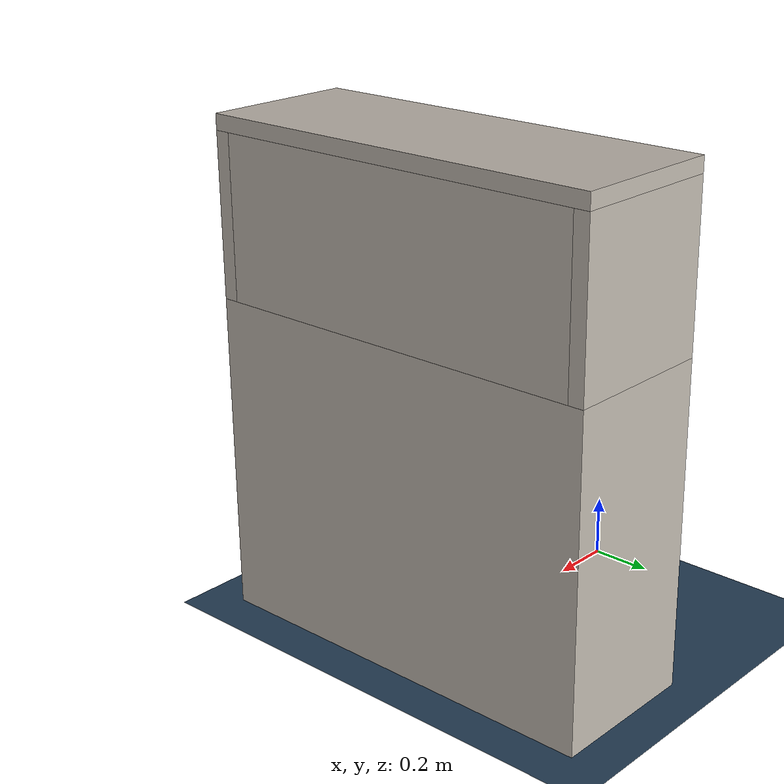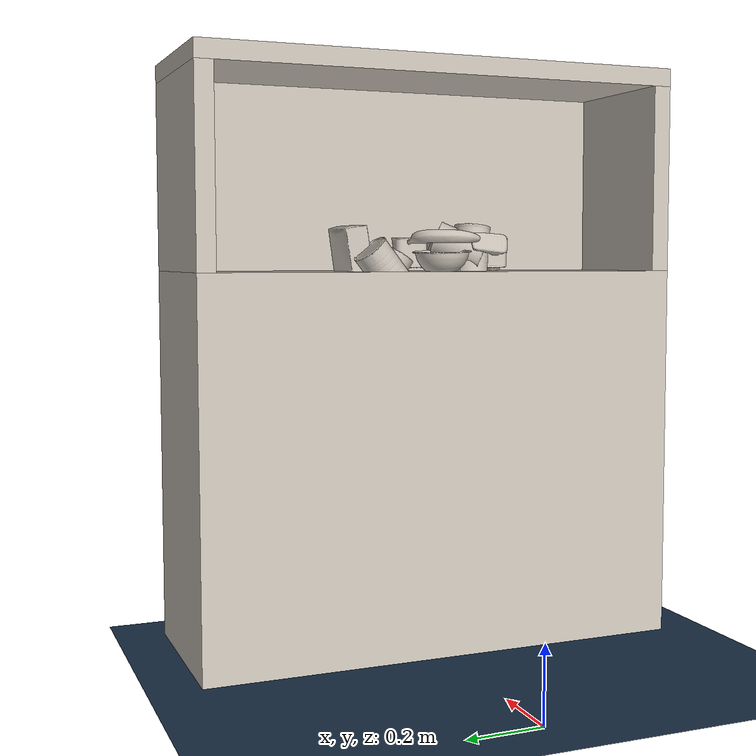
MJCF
<mujoco model="World">

  <compiler angle="radian" balanceinertia="true" inertiafromgeom="true" meshdir="/home/pracsys/GraspClutter6D_local" texturedir="/home/pracsys/GraspClutter6D_local" autolimits="true" />

  <option integrator="Euler" cone="elliptic" solver="CG" noslip_iterations="2">
    <flag warmstart="disable" multiccd="enable" />
  </option>

  <default>
    <geom density="10" />
  </default>

  <asset>

    <texture type="skybox" builtin="flat" rgb1="1 1 1" rgb2="0 0 0" width="512" height="512" />
    <texture name="grid" type="2d" builtin="checker" width="512" height="512" rgb1=".1 .2 .3" rgb2=".2 .3 .4" />
    <material name="grid" texture="grid" texrepeat="2 2" texuniform="true" specular="0" shininess="0" reflectance="0" emission="1" />

    <texture file="models/rs_table/ceramic.png" type="cube" name="tex-ceramic" />
    <material name="table_ceramic" reflectance="0.0" shininess="0.0" specular="0.2" texrepeat="1 1" texture="tex-ceramic" />
  <texture name="obj_000001_0_tex" type="2d" file="models_obj_m/obj_000001/obj_000001.png" /><material name="obj_000001_0_mat" texture="obj_000001_0_tex" specular="1.0" shininess="0.0" /><mesh name="obj_000001_0_vis" file="models_obj_m/obj_000001/obj_000001.obj" /><mesh name="obj_000001_0_obj_000001_collision_0" file="models_obj_m/obj_000001/obj_000001_collision_0.obj" /><mesh name="obj_000001_0_obj_000001_collision_1" file="models_obj_m/obj_000001/obj_000001_collision_1.obj" /><mesh name="obj_000001_0_obj_000001_collision_2" file="models_obj_m/obj_000001/obj_000001_collision_2.obj" /><mesh name="obj_000001_0_obj_000001_collision_3" file="models_obj_m/obj_000001/obj_000001_collision_3.obj" /><texture name="obj_000001_1_tex" type="2d" file="models_obj_m/obj_000001/obj_000001.png" /><material name="obj_000001_1_mat" texture="obj_000001_1_tex" specular="1.0" shininess="0.0" /><mesh name="obj_000001_1_vis" file="models_obj_m/obj_000001/obj_000001.obj" /><mesh name="obj_000001_1_obj_000001_collision_0" file="models_obj_m/obj_000001/obj_000001_collision_0.obj" /><mesh name="obj_000001_1_obj_000001_collision_1" file="models_obj_m/obj_000001/obj_000001_collision_1.obj" /><mesh name="obj_000001_1_obj_000001_collision_2" file="models_obj_m/obj_000001/obj_000001_collision_2.obj" /><mesh name="obj_000001_1_obj_000001_collision_3" file="models_obj_m/obj_000001/obj_000001_collision_3.obj" /><texture name="obj_000001_2_tex" type="2d" file="models_obj_m/obj_000001/obj_000001.png" /><material name="obj_000001_2_mat" texture="obj_000001_2_tex" specular="1.0" shininess="0.0" /><mesh name="obj_000001_2_vis" file="models_obj_m/obj_000001/obj_000001.obj" /><mesh name="obj_000001_2_obj_000001_collision_0" file="models_obj_m/obj_000001/obj_000001_collision_0.obj" /><mesh name="obj_000001_2_obj_000001_collision_1" file="models_obj_m/obj_000001/obj_000001_collision_1.obj" /><mesh name="obj_000001_2_obj_000001_collision_2" file="models_obj_m/obj_000001/obj_000001_collision_2.obj" /><mesh name="obj_000001_2_obj_000001_collision_3" file="models_obj_m/obj_000001/obj_000001_collision_3.obj" /><texture name="obj_000001_3_tex" type="2d" file="models_obj_m/obj_000001/obj_000001.png" /><material name="obj_000001_3_mat" texture="obj_000001_3_tex" specular="1.0" shininess="0.0" /><mesh name="obj_000001_3_vis" file="models_obj_m/obj_000001/obj_000001.obj" /><mesh name="obj_000001_3_obj_000001_collision_0" file="models_obj_m/obj_000001/obj_000001_collision_0.obj" /><mesh name="obj_000001_3_obj_000001_collision_1" file="models_obj_m/obj_000001/obj_000001_collision_1.obj" /><mesh name="obj_000001_3_obj_000001_collision_2" file="models_obj_m/obj_000001/obj_000001_collision_2.obj" /><mesh name="obj_000001_3_obj_000001_collision_3" file="models_obj_m/obj_000001/obj_000001_collision_3.obj" /><texture name="obj_000002_0_tex" type="2d" file="models_obj_m/obj_000002/obj_000002.png" /><material name="obj_000002_0_mat" texture="obj_000002_0_tex" specular="1.0" shininess="0.0" /><mesh name="obj_000002_0_vis" file="models_obj_m/obj_000002/obj_000002.obj" /><mesh name="obj_000002_0_obj_000002_collision_0" file="models_obj_m/obj_000002/obj_000002_collision_0.obj" /><mesh name="obj_000002_0_obj_000002_collision_1" file="models_obj_m/obj_000002/obj_000002_collision_1.obj" /><mesh name="obj_000002_0_obj_000002_collision_2" file="models_obj_m/obj_000002/obj_000002_collision_2.obj" /><mesh name="obj_000002_0_obj_000002_collision_3" file="models_obj_m/obj_000002/obj_000002_collision_3.obj" /><mesh name="obj_000002_0_obj_000002_collision_4" file="models_obj_m/obj_000002/obj_000002_collision_4.obj" /><mesh name="obj_000002_0_obj_000002_collision_5" file="models_obj_m/obj_000002/obj_000002_collision_5.obj" /><mesh name="obj_000002_0_obj_000002_collision_6" file="models_obj_m/obj_000002/obj_000002_collision_6.obj" /><mesh name="obj_000002_0_obj_000002_collision_7" file="models_obj_m/obj_000002/obj_000002_collision_7.obj" /><mesh name="obj_000002_0_obj_000002_collision_8" file="models_obj_m/obj_000002/obj_000002_collision_8.obj" /><mesh name="obj_000002_0_obj_000002_collision_9" file="models_obj_m/obj_000002/obj_000002_collision_9.obj" /><mesh name="obj_000002_0_obj_000002_collision_10" file="models_obj_m/obj_000002/obj_000002_collision_10.obj" /><mesh name="obj_000002_0_obj_000002_collision_11" file="models_obj_m/obj_000002/obj_000002_collision_11.obj" /><texture name="obj_000002_1_tex" type="2d" file="models_obj_m/obj_000002/obj_000002.png" /><material name="obj_000002_1_mat" texture="obj_000002_1_tex" specular="1.0" shininess="0.0" /><mesh name="obj_000002_1_vis" file="models_obj_m/obj_000002/obj_000002.obj" /><mesh name="obj_000002_1_obj_000002_collision_0" file="models_obj_m/obj_000002/obj_000002_collision_0.obj" /><mesh name="obj_000002_1_obj_000002_collision_1" file="models_obj_m/obj_000002/obj_000002_collision_1.obj" /><mesh name="obj_000002_1_obj_000002_collision_2" file="models_obj_m/obj_000002/obj_000002_collision_2.obj" /><mesh name="obj_000002_1_obj_000002_collision_3" file="models_obj_m/obj_000002/obj_000002_collision_3.obj" /><mesh name="obj_000002_1_obj_000002_collision_4" file="models_obj_m/obj_000002/obj_000002_collision_4.obj" /><mesh name="obj_000002_1_obj_000002_collision_5" file="models_obj_m/obj_000002/obj_000002_collision_5.obj" /><mesh name="obj_000002_1_obj_000002_collision_6" file="models_obj_m/obj_000002/obj_000002_collision_6.obj" /><mesh name="obj_000002_1_obj_000002_collision_7" file="models_obj_m/obj_000002/obj_000002_collision_7.obj" /><mesh name="obj_000002_1_obj_000002_collision_8" file="models_obj_m/obj_000002/obj_000002_collision_8.obj" /><mesh name="obj_000002_1_obj_000002_collision_9" file="models_obj_m/obj_000002/obj_000002_collision_9.obj" /><mesh name="obj_000002_1_obj_000002_collision_10" file="models_obj_m/obj_000002/obj_000002_collision_10.obj" /><mesh name="obj_000002_1_obj_000002_collision_11" file="models_obj_m/obj_000002/obj_000002_collision_11.obj" /><texture name="obj_000003_0_tex" type="2d" file="models_obj_m/obj_000003/obj_000003.png" /><material name="obj_000003_0_mat" texture="obj_000003_0_tex" specular="1.0" shininess="0.0" /><mesh name="obj_000003_0_vis" file="models_obj_m/obj_000003/obj_000003.obj" /><mesh name="obj_000003_0_obj_000003_collision_0" file="models_obj_m/obj_000003/obj_000003_collision_0.obj" /><mesh name="obj_000003_0_obj_000003_collision_1" file="models_obj_m/obj_000003/obj_000003_collision_1.obj" /><texture name="obj_000003_1_tex" type="2d" file="models_obj_m/obj_000003/obj_000003.png" /><material name="obj_000003_1_mat" texture="obj_000003_1_tex" specular="1.0" shininess="0.0" /><mesh name="obj_000003_1_vis" file="models_obj_m/obj_000003/obj_000003.obj" /><mesh name="obj_000003_1_obj_000003_collision_0" file="models_obj_m/obj_000003/obj_000003_collision_0.obj" /><mesh name="obj_000003_1_obj_000003_collision_1" file="models_obj_m/obj_000003/obj_000003_collision_1.obj" /><texture name="obj_000008_0_tex" type="2d" file="models_obj_m/obj_000008/obj_000008.png" /><material name="obj_000008_0_mat" texture="obj_000008_0_tex" specular="1.0" shininess="0.0" /><mesh name="obj_000008_0_vis" file="models_obj_m/obj_000008/obj_000008.obj" /><mesh name="obj_000008_0_obj_000008_collision_0" file="models_obj_m/obj_000008/obj_000008_collision_0.obj" /><mesh name="obj_000008_0_obj_000008_collision_1" file="models_obj_m/obj_000008/obj_000008_collision_1.obj" /><texture name="obj_000009_0_tex" type="2d" file="models_obj_m/obj_000009/obj_000010.png" /><material name="obj_000009_0_mat" texture="obj_000009_0_tex" specular="1.0" shininess="0.0" /><mesh name="obj_000009_0_vis" file="models_obj_m/obj_000009/obj_000009.obj" /><mesh name="obj_000009_0_obj_000009_collision_0" file="models_obj_m/obj_000009/obj_000009_collision_0.obj" /><mesh name="obj_000009_0_obj_000009_collision_1" file="models_obj_m/obj_000009/obj_000009_collision_1.obj" /><mesh name="obj_000009_0_obj_000009_collision_2" file="models_obj_m/obj_000009/obj_000009_collision_2.obj" /><mesh name="obj_000009_0_obj_000009_collision_3" file="models_obj_m/obj_000009/obj_000009_collision_3.obj" /><mesh name="obj_000009_0_obj_000009_collision_4" file="models_obj_m/obj_000009/obj_000009_collision_4.obj" /><mesh name="obj_000009_0_obj_000009_collision_5" file="models_obj_m/obj_000009/obj_000009_collision_5.obj" /><mesh name="obj_000009_0_obj_000009_collision_6" file="models_obj_m/obj_000009/obj_000009_collision_6.obj" /><mesh name="obj_000009_0_obj_000009_collision_7" file="models_obj_m/obj_000009/obj_000009_collision_7.obj" /><mesh name="obj_000009_0_obj_000009_collision_8" file="models_obj_m/obj_000009/obj_000009_collision_8.obj" /><mesh name="obj_000009_0_obj_000009_collision_9" file="models_obj_m/obj_000009/obj_000009_collision_9.obj" /><mesh name="obj_000009_0_obj_000009_collision_10" file="models_obj_m/obj_000009/obj_000009_collision_10.obj" /><mesh name="obj_000009_0_obj_000009_collision_11" file="models_obj_m/obj_000009/obj_000009_collision_11.obj" /><mesh name="obj_000009_0_obj_000009_collision_12" file="models_obj_m/obj_000009/obj_000009_collision_12.obj" /><mesh name="obj_000009_0_obj_000009_collision_13" file="models_obj_m/obj_000009/obj_000009_collision_13.obj" /><mesh name="obj_000009_0_obj_000009_collision_14" file="models_obj_m/obj_000009/obj_000009_collision_14.obj" /><mesh name="obj_000009_0_obj_000009_collision_15" file="models_obj_m/obj_000009/obj_000009_collision_15.obj" /><mesh name="obj_000009_0_obj_000009_collision_16" file="models_obj_m/obj_000009/obj_000009_collision_16.obj" /><mesh name="obj_000009_0_obj_000009_collision_17" file="models_obj_m/obj_000009/obj_000009_collision_17.obj" /><mesh name="obj_000009_0_obj_000009_collision_18" file="models_obj_m/obj_000009/obj_000009_collision_18.obj" /><mesh name="obj_000009_0_obj_000009_collision_19" file="models_obj_m/obj_000009/obj_000009_collision_19.obj" /><texture name="obj_000009_1_tex" type="2d" file="models_obj_m/obj_000009/obj_000010.png" /><material name="obj_000009_1_mat" texture="obj_000009_1_tex" specular="1.0" shininess="0.0" /><mesh name="obj_000009_1_vis" file="models_obj_m/obj_000009/obj_000009.obj" /><mesh name="obj_000009_1_obj_000009_collision_0" file="models_obj_m/obj_000009/obj_000009_collision_0.obj" /><mesh name="obj_000009_1_obj_000009_collision_1" file="models_obj_m/obj_000009/obj_000009_collision_1.obj" /><mesh name="obj_000009_1_obj_000009_collision_2" file="models_obj_m/obj_000009/obj_000009_collision_2.obj" /><mesh name="obj_000009_1_obj_000009_collision_3" file="models_obj_m/obj_000009/obj_000009_collision_3.obj" /><mesh name="obj_000009_1_obj_000009_collision_4" file="models_obj_m/obj_000009/obj_000009_collision_4.obj" /><mesh name="obj_000009_1_obj_000009_collision_5" file="models_obj_m/obj_000009/obj_000009_collision_5.obj" /><mesh name="obj_000009_1_obj_000009_collision_6" file="models_obj_m/obj_000009/obj_000009_collision_6.obj" /><mesh name="obj_000009_1_obj_000009_collision_7" file="models_obj_m/obj_000009/obj_000009_collision_7.obj" /><mesh name="obj_000009_1_obj_000009_collision_8" file="models_obj_m/obj_000009/obj_000009_collision_8.obj" /><mesh name="obj_000009_1_obj_000009_collision_9" file="models_obj_m/obj_000009/obj_000009_collision_9.obj" /><mesh name="obj_000009_1_obj_000009_collision_10" file="models_obj_m/obj_000009/obj_000009_collision_10.obj" /><mesh name="obj_000009_1_obj_000009_collision_11" file="models_obj_m/obj_000009/obj_000009_collision_11.obj" /><mesh name="obj_000009_1_obj_000009_collision_12" file="models_obj_m/obj_000009/obj_000009_collision_12.obj" /><mesh name="obj_000009_1_obj_000009_collision_13" file="models_obj_m/obj_000009/obj_000009_collision_13.obj" /><mesh name="obj_000009_1_obj_000009_collision_14" file="models_obj_m/obj_000009/obj_000009_collision_14.obj" /><mesh name="obj_000009_1_obj_000009_collision_15" file="models_obj_m/obj_000009/obj_000009_collision_15.obj" /><mesh name="obj_000009_1_obj_000009_collision_16" file="models_obj_m/obj_000009/obj_000009_collision_16.obj" /><mesh name="obj_000009_1_obj_000009_collision_17" file="models_obj_m/obj_000009/obj_000009_collision_17.obj" /><mesh name="obj_000009_1_obj_000009_collision_18" file="models_obj_m/obj_000009/obj_000009_collision_18.obj" /><mesh name="obj_000009_1_obj_000009_collision_19" file="models_obj_m/obj_000009/obj_000009_collision_19.obj" /><texture name="obj_000010_0_tex" type="2d" file="models_obj_m/obj_000010/obj_000011.png" /><material name="obj_000010_0_mat" texture="obj_000010_0_tex" specular="1.0" shininess="0.0" /><mesh name="obj_000010_0_vis" file="models_obj_m/obj_000010/obj_000010.obj" /><mesh name="obj_000010_0_obj_000010_collision_0" file="models_obj_m/obj_000010/obj_000010_collision_0.obj" /><mesh name="obj_000010_0_obj_000010_collision_1" file="models_obj_m/obj_000010/obj_000010_collision_1.obj" /><texture name="obj_000013_0_tex" type="2d" file="models_obj_m/obj_000013/obj_000014.png" /><material name="obj_000013_0_mat" texture="obj_000013_0_tex" specular="1.0" shininess="0.0" /><mesh name="obj_000013_0_vis" file="models_obj_m/obj_000013/obj_000013.obj" /><mesh name="obj_000013_0_obj_000013_collision_0" file="models_obj_m/obj_000013/obj_000013_collision_0.obj" /><mesh name="obj_000013_0_obj_000013_collision_1" file="models_obj_m/obj_000013/obj_000013_collision_1.obj" /><mesh name="obj_000013_0_obj_000013_collision_2" file="models_obj_m/obj_000013/obj_000013_collision_2.obj" /><mesh name="obj_000013_0_obj_000013_collision_3" file="models_obj_m/obj_000013/obj_000013_collision_3.obj" /><mesh name="obj_000013_0_obj_000013_collision_4" file="models_obj_m/obj_000013/obj_000013_collision_4.obj" /><mesh name="obj_000013_0_obj_000013_collision_5" file="models_obj_m/obj_000013/obj_000013_collision_5.obj" /><mesh name="obj_000013_0_obj_000013_collision_6" file="models_obj_m/obj_000013/obj_000013_collision_6.obj" /><mesh name="obj_000013_0_obj_000013_collision_7" file="models_obj_m/obj_000013/obj_000013_collision_7.obj" /><mesh name="obj_000013_0_obj_000013_collision_8" file="models_obj_m/obj_000013/obj_000013_collision_8.obj" /><mesh name="obj_000013_0_obj_000013_collision_9" file="models_obj_m/obj_000013/obj_000013_collision_9.obj" /><mesh name="obj_000013_0_obj_000013_collision_10" file="models_obj_m/obj_000013/obj_000013_collision_10.obj" /><mesh name="obj_000013_0_obj_000013_collision_11" file="models_obj_m/obj_000013/obj_000013_collision_11.obj" /><mesh name="obj_000013_0_obj_000013_collision_12" file="models_obj_m/obj_000013/obj_000013_collision_12.obj" /><mesh name="obj_000013_0_obj_000013_collision_13" file="models_obj_m/obj_000013/obj_000013_collision_13.obj" /><mesh name="obj_000013_0_obj_000013_collision_14" file="models_obj_m/obj_000013/obj_000013_collision_14.obj" /><mesh name="obj_000013_0_obj_000013_collision_15" file="models_obj_m/obj_000013/obj_000013_collision_15.obj" /><mesh name="obj_000013_0_obj_000013_collision_16" file="models_obj_m/obj_000013/obj_000013_collision_16.obj" /><mesh name="obj_000013_0_obj_000013_collision_17" file="models_obj_m/obj_000013/obj_000013_collision_17.obj" /><mesh name="obj_000013_0_obj_000013_collision_18" file="models_obj_m/obj_000013/obj_000013_collision_18.obj" /><mesh name="obj_000013_0_obj_000013_collision_19" file="models_obj_m/obj_000013/obj_000013_collision_19.obj" /><mesh name="obj_000013_0_obj_000013_collision_20" file="models_obj_m/obj_000013/obj_000013_collision_20.obj" /><mesh name="obj_000013_0_obj_000013_collision_21" file="models_obj_m/obj_000013/obj_000013_collision_21.obj" /><mesh name="obj_000013_0_obj_000013_collision_22" file="models_obj_m/obj_000013/obj_000013_collision_22.obj" /><mesh name="obj_000013_0_obj_000013_collision_23" file="models_obj_m/obj_000013/obj_000013_collision_23.obj" /><mesh name="obj_000013_0_obj_000013_collision_24" file="models_obj_m/obj_000013/obj_000013_collision_24.obj" /><mesh name="obj_000013_0_obj_000013_collision_25" file="models_obj_m/obj_000013/obj_000013_collision_25.obj" /><mesh name="obj_000013_0_obj_000013_collision_26" file="models_obj_m/obj_000013/obj_000013_collision_26.obj" /><mesh name="obj_000013_0_obj_000013_collision_27" file="models_obj_m/obj_000013/obj_000013_collision_27.obj" /><mesh name="obj_000013_0_obj_000013_collision_28" file="models_obj_m/obj_000013/obj_000013_collision_28.obj" /><mesh name="obj_000013_0_obj_000013_collision_29" file="models_obj_m/obj_000013/obj_000013_collision_29.obj" /><mesh name="obj_000013_0_obj_000013_collision_30" file="models_obj_m/obj_000013/obj_000013_collision_30.obj" /><mesh name="obj_000013_0_obj_000013_collision_31" file="models_obj_m/obj_000013/obj_000013_collision_31.obj" /><mesh name="obj_000013_0_obj_000013_collision_32" file="models_obj_m/obj_000013/obj_000013_collision_32.obj" /><mesh name="obj_000013_0_obj_000013_collision_33" file="models_obj_m/obj_000013/obj_000013_collision_33.obj" /><mesh name="obj_000013_0_obj_000013_collision_34" file="models_obj_m/obj_000013/obj_000013_collision_34.obj" /><mesh name="obj_000013_0_obj_000013_collision_35" file="models_obj_m/obj_000013/obj_000013_collision_35.obj" /><mesh name="obj_000013_0_obj_000013_collision_36" file="models_obj_m/obj_000013/obj_000013_collision_36.obj" /><mesh name="obj_000013_0_obj_000013_collision_37" file="models_obj_m/obj_000013/obj_000013_collision_37.obj" /><mesh name="obj_000013_0_obj_000013_collision_38" file="models_obj_m/obj_000013/obj_000013_collision_38.obj" /><mesh name="obj_000013_0_obj_000013_collision_39" file="models_obj_m/obj_000013/obj_000013_collision_39.obj" /><mesh name="obj_000013_0_obj_000013_collision_40" file="models_obj_m/obj_000013/obj_000013_collision_40.obj" /><mesh name="obj_000013_0_obj_000013_collision_41" file="models_obj_m/obj_000013/obj_000013_collision_41.obj" /><mesh name="obj_000013_0_obj_000013_collision_42" file="models_obj_m/obj_000013/obj_000013_collision_42.obj" /><texture name="obj_000015_0_tex" type="2d" file="models_obj_m/obj_000015/obj_000015.png" /><material name="obj_000015_0_mat" texture="obj_000015_0_tex" specular="1.0" shininess="0.0" /><mesh name="obj_000015_0_vis" file="models_obj_m/obj_000015/obj_000015.obj" /><mesh name="obj_000015_0_obj_000015_collision_0" file="models_obj_m/obj_000015/obj_000015_collision_0.obj" /><mesh name="obj_000015_0_obj_000015_collision_1" file="models_obj_m/obj_000015/obj_000015_collision_1.obj" /><texture name="obj_000017_0_tex" type="2d" file="models_obj_m/obj_000017/obj_000018.png" /><material name="obj_000017_0_mat" texture="obj_000017_0_tex" specular="1.0" shininess="0.0" /><mesh name="obj_000017_0_vis" file="models_obj_m/obj_000017/obj_000017.obj" /><mesh name="obj_000017_0_obj_000017_collision_0" file="models_obj_m/obj_000017/obj_000017_collision_0.obj" /><mesh name="obj_000017_0_obj_000017_collision_1" file="models_obj_m/obj_000017/obj_000017_collision_1.obj" /><mesh name="obj_000017_0_obj_000017_collision_2" file="models_obj_m/obj_000017/obj_000017_collision_2.obj" /><mesh name="obj_000017_0_obj_000017_collision_3" file="models_obj_m/obj_000017/obj_000017_collision_3.obj" /><mesh name="obj_000017_0_obj_000017_collision_4" file="models_obj_m/obj_000017/obj_000017_collision_4.obj" /><mesh name="obj_000017_0_obj_000017_collision_5" file="models_obj_m/obj_000017/obj_000017_collision_5.obj" /><mesh name="obj_000017_0_obj_000017_collision_6" file="models_obj_m/obj_000017/obj_000017_collision_6.obj" /><mesh name="obj_000017_0_obj_000017_collision_7" file="models_obj_m/obj_000017/obj_000017_collision_7.obj" /><mesh name="obj_000017_0_obj_000017_collision_8" file="models_obj_m/obj_000017/obj_000017_collision_8.obj" /><mesh name="obj_000017_0_obj_000017_collision_9" file="models_obj_m/obj_000017/obj_000017_collision_9.obj" /><mesh name="obj_000017_0_obj_000017_collision_10" file="models_obj_m/obj_000017/obj_000017_collision_10.obj" /><mesh name="obj_000017_0_obj_000017_collision_11" file="models_obj_m/obj_000017/obj_000017_collision_11.obj" /><mesh name="obj_000017_0_obj_000017_collision_12" file="models_obj_m/obj_000017/obj_000017_collision_12.obj" /><mesh name="obj_000017_0_obj_000017_collision_13" file="models_obj_m/obj_000017/obj_000017_collision_13.obj" /><mesh name="obj_000017_0_obj_000017_collision_14" file="models_obj_m/obj_000017/obj_000017_collision_14.obj" /><mesh name="obj_000017_0_obj_000017_collision_15" file="models_obj_m/obj_000017/obj_000017_collision_15.obj" /><mesh name="obj_000017_0_obj_000017_collision_16" file="models_obj_m/obj_000017/obj_000017_collision_16.obj" /><mesh name="obj_000017_0_obj_000017_collision_17" file="models_obj_m/obj_000017/obj_000017_collision_17.obj" /><mesh name="obj_000017_0_obj_000017_collision_18" file="models_obj_m/obj_000017/obj_000017_collision_18.obj" /><mesh name="obj_000017_0_obj_000017_collision_19" file="models_obj_m/obj_000017/obj_000017_collision_19.obj" /><mesh name="obj_000017_0_obj_000017_collision_20" file="models_obj_m/obj_000017/obj_000017_collision_20.obj" /><mesh name="obj_000017_0_obj_000017_collision_21" file="models_obj_m/obj_000017/obj_000017_collision_21.obj" /><mesh name="obj_000017_0_obj_000017_collision_22" file="models_obj_m/obj_000017/obj_000017_collision_22.obj" /><mesh name="obj_000017_0_obj_000017_collision_23" file="models_obj_m/obj_000017/obj_000017_collision_23.obj" /><mesh name="obj_000017_0_obj_000017_collision_24" file="models_obj_m/obj_000017/obj_000017_collision_24.obj" /><mesh name="obj_000017_0_obj_000017_collision_25" file="models_obj_m/obj_000017/obj_000017_collision_25.obj" /><mesh name="obj_000017_0_obj_000017_collision_26" file="models_obj_m/obj_000017/obj_000017_collision_26.obj" /><mesh name="obj_000017_0_obj_000017_collision_27" file="models_obj_m/obj_000017/obj_000017_collision_27.obj" /></asset>

  <worldbody>
    <geom name="floor" size="2 2 0.05" type="plane" material="grid" condim="3" />
    <light directional="true" pos="-0.5 0.5 3" dir="0 0 -1" castshadow="false" diffuse="1 1 1" />
    <body name="workspace" pos="0.8 0 0">
      <geom name="shelf_bottom" size="0.25 0.68 0.525" pos="0 0 0.525" type="box" material="table_ceramic" />
      <geom name="shelf_top" size="0.25 0.68 0.025" pos="0 0 1.595" type="box" material="table_ceramic" />
      <geom name="shelf_padding_left" size="0.25 0.025 0.26" pos="0 -0.655 1.31" type="box" material="table_ceramic" />
      <geom name="shelf_padding_right" size="0.25 0.025 0.26" pos="0 0.655 1.31" type="box" material="table_ceramic" />
      <geom name="shelf_padding_back" size="0.05 0.63 0.26" pos="0.2 0 1.31" type="box" material="table_ceramic" />
    </body>
  <body name="obj_000001_0" pos="0.7275499227776874 0.1185244374129894 1.0392548792186296" quat="0.1501238820776043 -0.48628620461854044 0.8319975142343639 0.22083632748142798"><joint name="obj_000001_0_joint" type="free" limited="false" actuatorfrclimited="false" /><geom name="obj_000001_0_geom" type="mesh" contype="0" conaffinity="0" group="1" mesh="obj_000001_0_vis" material="obj_000001_0_mat" /><geom type="mesh" contype="3" conaffinity="3" group="3" rgba="0.9088700260871841 0.5571276366315294 0.02905709149002622 1" mesh="obj_000001_0_obj_000001_collision_0" /><geom type="mesh" contype="3" conaffinity="3" group="3" rgba="0.6410593324381463 0.8402607000713928 0.7776918396385317 1" mesh="obj_000001_0_obj_000001_collision_1" /><geom type="mesh" contype="3" conaffinity="3" group="3" rgba="0.7741652165627951 0.3179101861807435 0.21643336209038533 1" mesh="obj_000001_0_obj_000001_collision_2" /><geom type="mesh" contype="3" conaffinity="3" group="3" rgba="0.8899250795032356 0.5115007140285017 0.5329157655053317 1" mesh="obj_000001_0_obj_000001_collision_3" /></body><body name="obj_000001_1" pos="0.6484895126663339 0.15005232339638885 1.056834373701697" quat="0.30885707746429936 0.8284003606619369 0.4493577832537803 -0.12820971408061752"><joint name="obj_000001_1_joint" type="free" limited="false" actuatorfrclimited="false" /><geom name="obj_000001_1_geom" type="mesh" contype="0" conaffinity="0" group="1" mesh="obj_000001_1_vis" material="obj_000001_1_mat" /><geom type="mesh" contype="3" conaffinity="3" group="3" rgba="0.9088700260871841 0.5571276366315294 0.02905709149002622 1" mesh="obj_000001_1_obj_000001_collision_0" /><geom type="mesh" contype="3" conaffinity="3" group="3" rgba="0.6410593324381463 0.8402607000713928 0.7776918396385317 1" mesh="obj_000001_1_obj_000001_collision_1" /><geom type="mesh" contype="3" conaffinity="3" group="3" rgba="0.7741652165627951 0.3179101861807435 0.21643336209038533 1" mesh="obj_000001_1_obj_000001_collision_2" /><geom type="mesh" contype="3" conaffinity="3" group="3" rgba="0.8899250795032356 0.5115007140285017 0.5329157655053317 1" mesh="obj_000001_1_obj_000001_collision_3" /></body><body name="obj_000001_2" pos="0.713019227427041 -0.09681374976469685 1.1139911171148094" quat="0.5720672021426435 -0.172462626646351 0.5291401820781457 0.6025001463512151"><joint name="obj_000001_2_joint" type="free" limited="false" actuatorfrclimited="false" /><geom name="obj_000001_2_geom" type="mesh" contype="0" conaffinity="0" group="1" mesh="obj_000001_2_vis" material="obj_000001_2_mat" /><geom type="mesh" contype="3" conaffinity="3" group="3" rgba="0.9088700260871841 0.5571276366315294 0.02905709149002622 1" mesh="obj_000001_2_obj_000001_collision_0" /><geom type="mesh" contype="3" conaffinity="3" group="3" rgba="0.6410593324381463 0.8402607000713928 0.7776918396385317 1" mesh="obj_000001_2_obj_000001_collision_1" /><geom type="mesh" contype="3" conaffinity="3" group="3" rgba="0.7741652165627951 0.3179101861807435 0.21643336209038533 1" mesh="obj_000001_2_obj_000001_collision_2" /><geom type="mesh" contype="3" conaffinity="3" group="3" rgba="0.8899250795032356 0.5115007140285017 0.5329157655053317 1" mesh="obj_000001_2_obj_000001_collision_3" /></body><body name="obj_000001_3" pos="0.7058763343209746 -0.13162036487294346 1.1056908196272361" quat="0.9513693852340426 0.04207728353906357 0.06374994199643114 -0.298432136246793"><joint name="obj_000001_3_joint" type="free" limited="false" actuatorfrclimited="false" /><geom name="obj_000001_3_geom" type="mesh" contype="0" conaffinity="0" group="1" mesh="obj_000001_3_vis" material="obj_000001_3_mat" /><geom type="mesh" contype="3" conaffinity="3" group="3" rgba="0.9088700260871841 0.5571276366315294 0.02905709149002622 1" mesh="obj_000001_3_obj_000001_collision_0" /><geom type="mesh" contype="3" conaffinity="3" group="3" rgba="0.6410593324381463 0.8402607000713928 0.7776918396385317 1" mesh="obj_000001_3_obj_000001_collision_1" /><geom type="mesh" contype="3" conaffinity="3" group="3" rgba="0.7741652165627951 0.3179101861807435 0.21643336209038533 1" mesh="obj_000001_3_obj_000001_collision_2" /><geom type="mesh" contype="3" conaffinity="3" group="3" rgba="0.8899250795032356 0.5115007140285017 0.5329157655053317 1" mesh="obj_000001_3_obj_000001_collision_3" /></body><body name="obj_000002_0" pos="0.7562571180702182 0.20518737108845242 1.0677022105261127" quat="0.056779455436022294 0.7093150953285151 0.7015537873859137 -0.03834673889613709"><joint name="obj_000002_0_joint" type="free" limited="false" actuatorfrclimited="false" /><geom name="obj_000002_0_geom" type="mesh" contype="0" conaffinity="0" group="1" mesh="obj_000002_0_vis" material="obj_000002_0_mat" /><geom type="mesh" contype="3" conaffinity="3" group="3" rgba="0.9306362109825914 0.8330381231198574 0.5807939113573184 1" mesh="obj_000002_0_obj_000002_collision_0" /><geom type="mesh" contype="3" conaffinity="3" group="3" rgba="0.22912688553814242 0.3875596124141527 0.6327362632726903 1" mesh="obj_000002_0_obj_000002_collision_1" /><geom type="mesh" contype="3" conaffinity="3" group="3" rgba="0.5626259340568875 0.06667345172874573 0.9646088448813395 1" mesh="obj_000002_0_obj_000002_collision_2" /><geom type="mesh" contype="3" conaffinity="3" group="3" rgba="0.2846097720774853 0.35893411128232966 0.5389009556396629 1" mesh="obj_000002_0_obj_000002_collision_3" /><geom type="mesh" contype="3" conaffinity="3" group="3" rgba="0.4508218349405261 0.28618698217910077 0.07910182632008134 1" mesh="obj_000002_0_obj_000002_collision_4" /><geom type="mesh" contype="3" conaffinity="3" group="3" rgba="0.9884794335745274 0.515469558330875 0.0707067722442899 1" mesh="obj_000002_0_obj_000002_collision_5" /><geom type="mesh" contype="3" conaffinity="3" group="3" rgba="0.498884402525659 0.4938823346017336 0.12591961447178301 1" mesh="obj_000002_0_obj_000002_collision_6" /><geom type="mesh" contype="3" conaffinity="3" group="3" rgba="0.1950625664278297 0.8240004663666761 0.4881804849656727 1" mesh="obj_000002_0_obj_000002_collision_7" /><geom type="mesh" contype="3" conaffinity="3" group="3" rgba="0.3132936482834743 0.5610004182168095 0.20088818676924047 1" mesh="obj_000002_0_obj_000002_collision_8" /><geom type="mesh" contype="3" conaffinity="3" group="3" rgba="0.13324297406595753 0.30489124850385396 0.8325815622552574 1" mesh="obj_000002_0_obj_000002_collision_9" /><geom type="mesh" contype="3" conaffinity="3" group="3" rgba="0.33502585031452325 0.012724563165045999 0.5652884737523166 1" mesh="obj_000002_0_obj_000002_collision_10" /><geom type="mesh" contype="3" conaffinity="3" group="3" rgba="0.7875683506774841 0.0948782425132162 0.929563921752164 1" mesh="obj_000002_0_obj_000002_collision_11" /></body><body name="obj_000002_1" pos="0.8136102690696756 -0.1142425915940627 1.0628315447172851" quat="0.05181430152173678 -0.6098874516060685 -0.790248474060791 0.029324456957654472"><joint name="obj_000002_1_joint" type="free" limited="false" actuatorfrclimited="false" /><geom name="obj_000002_1_geom" type="mesh" contype="0" conaffinity="0" group="1" mesh="obj_000002_1_vis" material="obj_000002_1_mat" /><geom type="mesh" contype="3" conaffinity="3" group="3" rgba="0.9306362109825914 0.8330381231198574 0.5807939113573184 1" mesh="obj_000002_1_obj_000002_collision_0" /><geom type="mesh" contype="3" conaffinity="3" group="3" rgba="0.22912688553814242 0.3875596124141527 0.6327362632726903 1" mesh="obj_000002_1_obj_000002_collision_1" /><geom type="mesh" contype="3" conaffinity="3" group="3" rgba="0.5626259340568875 0.06667345172874573 0.9646088448813395 1" mesh="obj_000002_1_obj_000002_collision_2" /><geom type="mesh" contype="3" conaffinity="3" group="3" rgba="0.2846097720774853 0.35893411128232966 0.5389009556396629 1" mesh="obj_000002_1_obj_000002_collision_3" /><geom type="mesh" contype="3" conaffinity="3" group="3" rgba="0.4508218349405261 0.28618698217910077 0.07910182632008134 1" mesh="obj_000002_1_obj_000002_collision_4" /><geom type="mesh" contype="3" conaffinity="3" group="3" rgba="0.9884794335745274 0.515469558330875 0.0707067722442899 1" mesh="obj_000002_1_obj_000002_collision_5" /><geom type="mesh" contype="3" conaffinity="3" group="3" rgba="0.498884402525659 0.4938823346017336 0.12591961447178301 1" mesh="obj_000002_1_obj_000002_collision_6" /><geom type="mesh" contype="3" conaffinity="3" group="3" rgba="0.1950625664278297 0.8240004663666761 0.4881804849656727 1" mesh="obj_000002_1_obj_000002_collision_7" /><geom type="mesh" contype="3" conaffinity="3" group="3" rgba="0.3132936482834743 0.5610004182168095 0.20088818676924047 1" mesh="obj_000002_1_obj_000002_collision_8" /><geom type="mesh" contype="3" conaffinity="3" group="3" rgba="0.13324297406595753 0.30489124850385396 0.8325815622552574 1" mesh="obj_000002_1_obj_000002_collision_9" /><geom type="mesh" contype="3" conaffinity="3" group="3" rgba="0.33502585031452325 0.012724563165045999 0.5652884737523166 1" mesh="obj_000002_1_obj_000002_collision_10" /><geom type="mesh" contype="3" conaffinity="3" group="3" rgba="0.7875683506774841 0.0948782425132162 0.929563921752164 1" mesh="obj_000002_1_obj_000002_collision_11" /></body><body name="obj_000003_0" pos="0.7775537641448769 -0.054200705721557954 1.054247007720454" quat="0.3491901819209344 -0.7133601259558339 -0.5883610154310968 0.1517065030484525"><joint name="obj_000003_0_joint" type="free" limited="false" actuatorfrclimited="false" /><geom name="obj_000003_0_geom" type="mesh" contype="0" conaffinity="0" group="1" mesh="obj_000003_0_vis" material="obj_000003_0_mat" /><geom type="mesh" contype="3" conaffinity="3" group="3" rgba="0.522509730671621 0.2757706064801614 0.3354227120316712 1" mesh="obj_000003_0_obj_000003_collision_0" /><geom type="mesh" contype="3" conaffinity="3" group="3" rgba="0.5516880957351997 0.30786775055087157 0.8022185455408283 1" mesh="obj_000003_0_obj_000003_collision_1" /></body><body name="obj_000003_1" pos="0.7110399199879116 -0.08024299439133073 1.0613987419528432" quat="0.05566593918529638 -0.8732709522013836 -0.45311107123254785 0.170263044676173"><joint name="obj_000003_1_joint" type="free" limited="false" actuatorfrclimited="false" /><geom name="obj_000003_1_geom" type="mesh" contype="0" conaffinity="0" group="1" mesh="obj_000003_1_vis" material="obj_000003_1_mat" /><geom type="mesh" contype="3" conaffinity="3" group="3" rgba="0.522509730671621 0.2757706064801614 0.3354227120316712 1" mesh="obj_000003_1_obj_000003_collision_0" /><geom type="mesh" contype="3" conaffinity="3" group="3" rgba="0.5516880957351997 0.30786775055087157 0.8022185455408283 1" mesh="obj_000003_1_obj_000003_collision_1" /></body><body name="obj_000008_0" pos="0.8163847207469681 0.162023977148527 1.0589330629665852" quat="0.6673139178479406 -0.5032823969492684 -0.527276817637365 0.1528990567323537"><joint name="obj_000008_0_joint" type="free" limited="false" actuatorfrclimited="false" /><geom name="obj_000008_0_geom" type="mesh" contype="0" conaffinity="0" group="1" mesh="obj_000008_0_vis" material="obj_000008_0_mat" /><geom type="mesh" contype="3" conaffinity="3" group="3" rgba="0.01671885427652786 0.8783564729505184 0.3287082962157769 1" mesh="obj_000008_0_obj_000008_collision_0" /><geom type="mesh" contype="3" conaffinity="3" group="3" rgba="0.2759906839891276 0.5799351894391934 0.46463070880456725 1" mesh="obj_000008_0_obj_000008_collision_1" /></body><body name="obj_000009_0" pos="0.7036316603709372 -0.18860888030358405 1.1006340931913896" quat="0.6942546598826298 -0.0007595435400590192 -0.0005975807014336754 -0.7197287914361699"><joint name="obj_000009_0_joint" type="free" limited="false" actuatorfrclimited="false" /><geom name="obj_000009_0_geom" type="mesh" contype="0" conaffinity="0" group="1" mesh="obj_000009_0_vis" material="obj_000009_0_mat" /><geom type="mesh" contype="3" conaffinity="3" group="3" rgba="0.4701424646800718 0.15058678152224558 0.03232555140522908 1" mesh="obj_000009_0_obj_000009_collision_0" /><geom type="mesh" contype="3" conaffinity="3" group="3" rgba="0.6334264391293729 0.7000588704139452 0.9101191958261439 1" mesh="obj_000009_0_obj_000009_collision_1" /><geom type="mesh" contype="3" conaffinity="3" group="3" rgba="0.4796571013469104 0.35150290582234567 0.6375226777586448 1" mesh="obj_000009_0_obj_000009_collision_2" /><geom type="mesh" contype="3" conaffinity="3" group="3" rgba="0.8005895298046106 0.9629796370374781 0.317100801488033 1" mesh="obj_000009_0_obj_000009_collision_3" /><geom type="mesh" contype="3" conaffinity="3" group="3" rgba="0.7316817429575484 0.8125950918942385 0.9770420869852225 1" mesh="obj_000009_0_obj_000009_collision_4" /><geom type="mesh" contype="3" conaffinity="3" group="3" rgba="0.027540659115147248 0.9471989066929749 0.9744029211039258 1" mesh="obj_000009_0_obj_000009_collision_5" /><geom type="mesh" contype="3" conaffinity="3" group="3" rgba="0.2468027165587915 0.11355498828593935 0.640482643727051 1" mesh="obj_000009_0_obj_000009_collision_6" /><geom type="mesh" contype="3" conaffinity="3" group="3" rgba="0.26381115444349046 0.5064233410291425 0.06434432684247016 1" mesh="obj_000009_0_obj_000009_collision_7" /><geom type="mesh" contype="3" conaffinity="3" group="3" rgba="0.39104113124687934 0.2576147934487044 0.9823472559836796 1" mesh="obj_000009_0_obj_000009_collision_8" /><geom type="mesh" contype="3" conaffinity="3" group="3" rgba="0.9013360285468692 0.8336454994592718 0.7736518361085535 1" mesh="obj_000009_0_obj_000009_collision_9" /><geom type="mesh" contype="3" conaffinity="3" group="3" rgba="0.5638034510545271 0.2309865979911192 0.056178319664080933 1" mesh="obj_000009_0_obj_000009_collision_10" /><geom type="mesh" contype="3" conaffinity="3" group="3" rgba="0.07539982230460429 0.8840212053523439 0.37940438346802385 1" mesh="obj_000009_0_obj_000009_collision_11" /><geom type="mesh" contype="3" conaffinity="3" group="3" rgba="0.12997684997558534 0.2197119572502484 0.7348773851044048 1" mesh="obj_000009_0_obj_000009_collision_12" /><geom type="mesh" contype="3" conaffinity="3" group="3" rgba="0.4102032814193337 0.31374038786638225 0.9229380645994204 1" mesh="obj_000009_0_obj_000009_collision_13" /><geom type="mesh" contype="3" conaffinity="3" group="3" rgba="0.6775180913271598 0.3730860518815964 0.7560922645576079 1" mesh="obj_000009_0_obj_000009_collision_14" /><geom type="mesh" contype="3" conaffinity="3" group="3" rgba="0.20013413652544576 0.046709010626810876 0.4530831720844085 1" mesh="obj_000009_0_obj_000009_collision_15" /><geom type="mesh" contype="3" conaffinity="3" group="3" rgba="0.997743233778264 0.8720065066436486 0.22893873285390964 1" mesh="obj_000009_0_obj_000009_collision_16" /><geom type="mesh" contype="3" conaffinity="3" group="3" rgba="0.2486444461791405 0.8482398554397806 0.9913239367051718 1" mesh="obj_000009_0_obj_000009_collision_17" /><geom type="mesh" contype="3" conaffinity="3" group="3" rgba="0.8552881572534362 0.878526833870521 0.5714311973878448 1" mesh="obj_000009_0_obj_000009_collision_18" /><geom type="mesh" contype="3" conaffinity="3" group="3" rgba="0.6375258423342278 0.3334964947472784 0.042644175833863374 1" mesh="obj_000009_0_obj_000009_collision_19" /></body><body name="obj_000009_1" pos="0.7621471927733947 0.030710185116695654 1.1011004445956827" quat="0.7114517788235928 0.007469081923567372 -0.00018889213067507793 0.7026951996020234"><joint name="obj_000009_1_joint" type="free" limited="false" actuatorfrclimited="false" /><geom name="obj_000009_1_geom" type="mesh" contype="0" conaffinity="0" group="1" mesh="obj_000009_1_vis" material="obj_000009_1_mat" /><geom type="mesh" contype="3" conaffinity="3" group="3" rgba="0.4701424646800718 0.15058678152224558 0.03232555140522908 1" mesh="obj_000009_1_obj_000009_collision_0" /><geom type="mesh" contype="3" conaffinity="3" group="3" rgba="0.6334264391293729 0.7000588704139452 0.9101191958261439 1" mesh="obj_000009_1_obj_000009_collision_1" /><geom type="mesh" contype="3" conaffinity="3" group="3" rgba="0.4796571013469104 0.35150290582234567 0.6375226777586448 1" mesh="obj_000009_1_obj_000009_collision_2" /><geom type="mesh" contype="3" conaffinity="3" group="3" rgba="0.8005895298046106 0.9629796370374781 0.317100801488033 1" mesh="obj_000009_1_obj_000009_collision_3" /><geom type="mesh" contype="3" conaffinity="3" group="3" rgba="0.7316817429575484 0.8125950918942385 0.9770420869852225 1" mesh="obj_000009_1_obj_000009_collision_4" /><geom type="mesh" contype="3" conaffinity="3" group="3" rgba="0.027540659115147248 0.9471989066929749 0.9744029211039258 1" mesh="obj_000009_1_obj_000009_collision_5" /><geom type="mesh" contype="3" conaffinity="3" group="3" rgba="0.2468027165587915 0.11355498828593935 0.640482643727051 1" mesh="obj_000009_1_obj_000009_collision_6" /><geom type="mesh" contype="3" conaffinity="3" group="3" rgba="0.26381115444349046 0.5064233410291425 0.06434432684247016 1" mesh="obj_000009_1_obj_000009_collision_7" /><geom type="mesh" contype="3" conaffinity="3" group="3" rgba="0.39104113124687934 0.2576147934487044 0.9823472559836796 1" mesh="obj_000009_1_obj_000009_collision_8" /><geom type="mesh" contype="3" conaffinity="3" group="3" rgba="0.9013360285468692 0.8336454994592718 0.7736518361085535 1" mesh="obj_000009_1_obj_000009_collision_9" /><geom type="mesh" contype="3" conaffinity="3" group="3" rgba="0.5638034510545271 0.2309865979911192 0.056178319664080933 1" mesh="obj_000009_1_obj_000009_collision_10" /><geom type="mesh" contype="3" conaffinity="3" group="3" rgba="0.07539982230460429 0.8840212053523439 0.37940438346802385 1" mesh="obj_000009_1_obj_000009_collision_11" /><geom type="mesh" contype="3" conaffinity="3" group="3" rgba="0.12997684997558534 0.2197119572502484 0.7348773851044048 1" mesh="obj_000009_1_obj_000009_collision_12" /><geom type="mesh" contype="3" conaffinity="3" group="3" rgba="0.4102032814193337 0.31374038786638225 0.9229380645994204 1" mesh="obj_000009_1_obj_000009_collision_13" /><geom type="mesh" contype="3" conaffinity="3" group="3" rgba="0.6775180913271598 0.3730860518815964 0.7560922645576079 1" mesh="obj_000009_1_obj_000009_collision_14" /><geom type="mesh" contype="3" conaffinity="3" group="3" rgba="0.20013413652544576 0.046709010626810876 0.4530831720844085 1" mesh="obj_000009_1_obj_000009_collision_15" /><geom type="mesh" contype="3" conaffinity="3" group="3" rgba="0.997743233778264 0.8720065066436486 0.22893873285390964 1" mesh="obj_000009_1_obj_000009_collision_16" /><geom type="mesh" contype="3" conaffinity="3" group="3" rgba="0.2486444461791405 0.8482398554397806 0.9913239367051718 1" mesh="obj_000009_1_obj_000009_collision_17" /><geom type="mesh" contype="3" conaffinity="3" group="3" rgba="0.8552881572534362 0.878526833870521 0.5714311973878448 1" mesh="obj_000009_1_obj_000009_collision_18" /><geom type="mesh" contype="3" conaffinity="3" group="3" rgba="0.6375258423342278 0.3334964947472784 0.042644175833863374 1" mesh="obj_000009_1_obj_000009_collision_19" /></body><body name="obj_000010_0" pos="0.5846416695784515 0.0006466826065284759 1.1428157403815862" quat="0.9997209305681822 0.003222365556857504 0.022008155071334468 -0.007957289391596817"><joint name="obj_000010_0_joint" type="free" limited="false" actuatorfrclimited="false" /><geom name="obj_000010_0_geom" type="mesh" contype="0" conaffinity="0" group="1" mesh="obj_000010_0_vis" material="obj_000010_0_mat" /><geom type="mesh" contype="3" conaffinity="3" group="3" rgba="0.8732881017396182 0.3343353395712876 0.08871879557869766 1" mesh="obj_000010_0_obj_000010_collision_0" /><geom type="mesh" contype="3" conaffinity="3" group="3" rgba="0.7768969898522989 0.17302799154634285 0.5980561258489338 1" mesh="obj_000010_0_obj_000010_collision_1" /></body><body name="obj_000013_0" pos="0.6429707772973376 -0.01720438736903529 1.078505635255272" quat="0.990266009882175 -0.015080905764651282 -0.016721551056338324 0.13735423431268715"><joint name="obj_000013_0_joint" type="free" limited="false" actuatorfrclimited="false" /><geom name="obj_000013_0_geom" type="mesh" contype="0" conaffinity="0" group="1" mesh="obj_000013_0_vis" material="obj_000013_0_mat" /><geom type="mesh" contype="3" conaffinity="3" group="3" rgba="0.7144449078304332 0.20729995565427417 0.9178363700574447 1" mesh="obj_000013_0_obj_000013_collision_0" /><geom type="mesh" contype="3" conaffinity="3" group="3" rgba="0.8679721083209072 0.681676504550008 0.39306036015103996 1" mesh="obj_000013_0_obj_000013_collision_1" /><geom type="mesh" contype="3" conaffinity="3" group="3" rgba="0.4222762318266222 0.7236405457523389 0.5776720096370943 1" mesh="obj_000013_0_obj_000013_collision_2" /><geom type="mesh" contype="3" conaffinity="3" group="3" rgba="0.3811132546629832 0.20215465648724362 0.7520145076915546 1" mesh="obj_000013_0_obj_000013_collision_3" /><geom type="mesh" contype="3" conaffinity="3" group="3" rgba="0.8942398171755435 0.15581696020393487 0.2948183730971583 1" mesh="obj_000013_0_obj_000013_collision_4" /><geom type="mesh" contype="3" conaffinity="3" group="3" rgba="0.2417240360311006 0.7592152106015807 0.3902675366012601 1" mesh="obj_000013_0_obj_000013_collision_5" /><geom type="mesh" contype="3" conaffinity="3" group="3" rgba="0.7575682610228988 0.71336761782297 0.9000744888221621 1" mesh="obj_000013_0_obj_000013_collision_6" /><geom type="mesh" contype="3" conaffinity="3" group="3" rgba="0.6446126328225535 0.791897169193733 0.903810115591806 1" mesh="obj_000013_0_obj_000013_collision_7" /><geom type="mesh" contype="3" conaffinity="3" group="3" rgba="0.16065949094204024 0.7129315196731527 0.26362017540303107 1" mesh="obj_000013_0_obj_000013_collision_8" /><geom type="mesh" contype="3" conaffinity="3" group="3" rgba="0.3807771090070753 0.2466972699876384 0.03935990556652813 1" mesh="obj_000013_0_obj_000013_collision_9" /><geom type="mesh" contype="3" conaffinity="3" group="3" rgba="0.13563712303681397 0.6930968980104955 0.5192151078476201 1" mesh="obj_000013_0_obj_000013_collision_10" /><geom type="mesh" contype="3" conaffinity="3" group="3" rgba="0.024566780316822356 0.28274751850143287 0.43892641421651424 1" mesh="obj_000013_0_obj_000013_collision_11" /><geom type="mesh" contype="3" conaffinity="3" group="3" rgba="0.9611355436206976 0.1398983653776168 0.013281849357456355 1" mesh="obj_000013_0_obj_000013_collision_12" /><geom type="mesh" contype="3" conaffinity="3" group="3" rgba="0.16394261226899853 0.18011486841153612 0.261500747000427 1" mesh="obj_000013_0_obj_000013_collision_13" /><geom type="mesh" contype="3" conaffinity="3" group="3" rgba="0.9372545164731062 0.43083457597005825 0.2977176404473417 1" mesh="obj_000013_0_obj_000013_collision_14" /><geom type="mesh" contype="3" conaffinity="3" group="3" rgba="0.031516698743391136 0.3219220373951125 0.8781862881808276 1" mesh="obj_000013_0_obj_000013_collision_15" /><geom type="mesh" contype="3" conaffinity="3" group="3" rgba="0.02675922996645186 0.9922976068282781 0.007381407445995691 1" mesh="obj_000013_0_obj_000013_collision_16" /><geom type="mesh" contype="3" conaffinity="3" group="3" rgba="0.2616329704439392 0.8542187029589711 0.7241329221218575 1" mesh="obj_000013_0_obj_000013_collision_17" /><geom type="mesh" contype="3" conaffinity="3" group="3" rgba="0.4206173565556577 0.19568760805702212 0.07953404942627174 1" mesh="obj_000013_0_obj_000013_collision_18" /><geom type="mesh" contype="3" conaffinity="3" group="3" rgba="0.6258372434102025 0.941102970428584 0.9848429359171544 1" mesh="obj_000013_0_obj_000013_collision_19" /><geom type="mesh" contype="3" conaffinity="3" group="3" rgba="0.48476862781453456 0.6464837012010779 0.09451531120989676 1" mesh="obj_000013_0_obj_000013_collision_20" /><geom type="mesh" contype="3" conaffinity="3" group="3" rgba="0.1499291510091808 0.6953859819117357 0.6465605447898165 1" mesh="obj_000013_0_obj_000013_collision_21" /><geom type="mesh" contype="3" conaffinity="3" group="3" rgba="0.10867033303428852 0.978104636023048 0.357697068924551 1" mesh="obj_000013_0_obj_000013_collision_22" /><geom type="mesh" contype="3" conaffinity="3" group="3" rgba="0.5296024898295869 0.79373291584904 0.9945877669564267 1" mesh="obj_000013_0_obj_000013_collision_23" /><geom type="mesh" contype="3" conaffinity="3" group="3" rgba="0.2535176902922558 0.7850034645037743 0.5109712695625952 1" mesh="obj_000013_0_obj_000013_collision_24" /><geom type="mesh" contype="3" conaffinity="3" group="3" rgba="0.6056982213796875 0.40921073467235836 0.09899078122809213 1" mesh="obj_000013_0_obj_000013_collision_25" /><geom type="mesh" contype="3" conaffinity="3" group="3" rgba="0.883355825637934 0.22180977392998258 0.02657703610970763 1" mesh="obj_000013_0_obj_000013_collision_26" /><geom type="mesh" contype="3" conaffinity="3" group="3" rgba="0.40558726586937655 0.4789794972792186 0.3060234025628258 1" mesh="obj_000013_0_obj_000013_collision_27" /><geom type="mesh" contype="3" conaffinity="3" group="3" rgba="0.40694994851305444 0.05141490066920784 0.738857658183313 1" mesh="obj_000013_0_obj_000013_collision_28" /><geom type="mesh" contype="3" conaffinity="3" group="3" rgba="0.08167123731304904 0.44468972618504576 0.909513688034694 1" mesh="obj_000013_0_obj_000013_collision_29" /><geom type="mesh" contype="3" conaffinity="3" group="3" rgba="0.43983320336223675 0.023288947525740622 0.31535110360234764 1" mesh="obj_000013_0_obj_000013_collision_30" /><geom type="mesh" contype="3" conaffinity="3" group="3" rgba="0.9246187387738158 0.19662054774999016 0.0025641556684291578 1" mesh="obj_000013_0_obj_000013_collision_31" /><geom type="mesh" contype="3" conaffinity="3" group="3" rgba="0.045116612411272294 0.03568353398017865 0.4988035813233547 1" mesh="obj_000013_0_obj_000013_collision_32" /><geom type="mesh" contype="3" conaffinity="3" group="3" rgba="0.9319052096815352 0.9810101582709009 0.3479210478200858 1" mesh="obj_000013_0_obj_000013_collision_33" /><geom type="mesh" contype="3" conaffinity="3" group="3" rgba="0.6159303212672878 0.5133135910288431 0.325090192866053 1" mesh="obj_000013_0_obj_000013_collision_34" /><geom type="mesh" contype="3" conaffinity="3" group="3" rgba="0.9849344998388689 0.24294440606249046 0.6152785687052574 1" mesh="obj_000013_0_obj_000013_collision_35" /><geom type="mesh" contype="3" conaffinity="3" group="3" rgba="0.23831369728617768 0.30135001589082866 0.01950178993412488 1" mesh="obj_000013_0_obj_000013_collision_36" /><geom type="mesh" contype="3" conaffinity="3" group="3" rgba="0.8893176464217286 0.9125313127217429 0.9492610344899751 1" mesh="obj_000013_0_obj_000013_collision_37" /><geom type="mesh" contype="3" conaffinity="3" group="3" rgba="0.051120110890551906 0.8122331757110894 0.932558326795465 1" mesh="obj_000013_0_obj_000013_collision_38" /><geom type="mesh" contype="3" conaffinity="3" group="3" rgba="0.5797100002940134 0.6688424793390167 0.625986013027617 1" mesh="obj_000013_0_obj_000013_collision_39" /><geom type="mesh" contype="3" conaffinity="3" group="3" rgba="0.8702933956914729 0.6777120300180547 0.8117268026780544 1" mesh="obj_000013_0_obj_000013_collision_40" /><geom type="mesh" contype="3" conaffinity="3" group="3" rgba="0.7113154344650927 0.4504182301539761 0.9850233708858935 1" mesh="obj_000013_0_obj_000013_collision_41" /><geom type="mesh" contype="3" conaffinity="3" group="3" rgba="0.6463048132580995 0.23232105267837944 0.9412536874981714 1" mesh="obj_000013_0_obj_000013_collision_42" /></body><body name="obj_000015_0" pos="0.7252836673933403 -0.1571941887691895 1.100499444701789" quat="0.6408989828127893 -0.08559542004834188 0.1442055456012361 -0.7490838928412019"><joint name="obj_000015_0_joint" type="free" limited="false" actuatorfrclimited="false" /><geom name="obj_000015_0_geom" type="mesh" contype="0" conaffinity="0" group="1" mesh="obj_000015_0_vis" material="obj_000015_0_mat" /><geom type="mesh" contype="3" conaffinity="3" group="3" rgba="0.3190316346741193 0.1952698898252364 0.8681956882216872 1" mesh="obj_000015_0_obj_000015_collision_0" /><geom type="mesh" contype="3" conaffinity="3" group="3" rgba="0.05496090459096381 0.16901046389765384 0.29761740439272677 1" mesh="obj_000015_0_obj_000015_collision_1" /></body><body name="obj_000017_0" pos="0.7951256712346688 -0.19107994192221894 1.0693379677665324" quat="0.4912896154404646 0.005905368594327726 -0.004624207725987595 0.8709639815084386"><joint name="obj_000017_0_joint" type="free" limited="false" actuatorfrclimited="false" /><geom name="obj_000017_0_geom" type="mesh" contype="0" conaffinity="0" group="1" mesh="obj_000017_0_vis" material="obj_000017_0_mat" /><geom type="mesh" contype="3" conaffinity="3" group="3" rgba="0.8300607436027256 0.7746450626520026 0.028259677595148802 1" mesh="obj_000017_0_obj_000017_collision_0" /><geom type="mesh" contype="3" conaffinity="3" group="3" rgba="0.8722382693318378 0.7274771061770118 0.3531693377771803 1" mesh="obj_000017_0_obj_000017_collision_1" /><geom type="mesh" contype="3" conaffinity="3" group="3" rgba="0.5980877609329729 0.08964925108942157 0.9827409328247976 1" mesh="obj_000017_0_obj_000017_collision_2" /><geom type="mesh" contype="3" conaffinity="3" group="3" rgba="0.12896852327670105 0.23262496541784183 0.708307388236716 1" mesh="obj_000017_0_obj_000017_collision_3" /><geom type="mesh" contype="3" conaffinity="3" group="3" rgba="0.49139690091838406 0.8926335265499304 0.5725586181467778 1" mesh="obj_000017_0_obj_000017_collision_4" /><geom type="mesh" contype="3" conaffinity="3" group="3" rgba="0.7937783832204612 0.42217433502668733 0.08859246894572148 1" mesh="obj_000017_0_obj_000017_collision_5" /><geom type="mesh" contype="3" conaffinity="3" group="3" rgba="0.31968501261458615 0.055692886468857505 0.13372686667046396 1" mesh="obj_000017_0_obj_000017_collision_6" /><geom type="mesh" contype="3" conaffinity="3" group="3" rgba="0.13222025522357372 0.17526274312101753 0.06896550916264677 1" mesh="obj_000017_0_obj_000017_collision_7" /><geom type="mesh" contype="3" conaffinity="3" group="3" rgba="0.619764861047721 0.6525147311748656 0.1945147804146634 1" mesh="obj_000017_0_obj_000017_collision_8" /><geom type="mesh" contype="3" conaffinity="3" group="3" rgba="0.7542938162430041 0.5932445765901436 0.7103646795954568 1" mesh="obj_000017_0_obj_000017_collision_9" /><geom type="mesh" contype="3" conaffinity="3" group="3" rgba="0.2524389464191312 0.4250197643184034 0.5484201401942239 1" mesh="obj_000017_0_obj_000017_collision_10" /><geom type="mesh" contype="3" conaffinity="3" group="3" rgba="0.12747630615148275 0.8773457669467531 0.2903516195529615 1" mesh="obj_000017_0_obj_000017_collision_11" /><geom type="mesh" contype="3" conaffinity="3" group="3" rgba="0.36705284536176563 0.43857882856348707 0.1921920616144135 1" mesh="obj_000017_0_obj_000017_collision_12" /><geom type="mesh" contype="3" conaffinity="3" group="3" rgba="0.020558595977965055 0.21526825750714773 0.772725517547242 1" mesh="obj_000017_0_obj_000017_collision_13" /><geom type="mesh" contype="3" conaffinity="3" group="3" rgba="0.10547210479742064 0.9890552387987501 0.2674120461420154 1" mesh="obj_000017_0_obj_000017_collision_14" /><geom type="mesh" contype="3" conaffinity="3" group="3" rgba="0.5360270978662599 0.047077211229519134 0.4732059459915734 1" mesh="obj_000017_0_obj_000017_collision_15" /><geom type="mesh" contype="3" conaffinity="3" group="3" rgba="0.32224738434780165 0.15368027561517583 0.33294464645257393 1" mesh="obj_000017_0_obj_000017_collision_16" /><geom type="mesh" contype="3" conaffinity="3" group="3" rgba="0.062153350878422775 0.15503522074777376 0.031107839074490995 1" mesh="obj_000017_0_obj_000017_collision_17" /><geom type="mesh" contype="3" conaffinity="3" group="3" rgba="0.8894341143153127 0.9274654291220618 0.8960713779272304 1" mesh="obj_000017_0_obj_000017_collision_18" /><geom type="mesh" contype="3" conaffinity="3" group="3" rgba="0.6407302652172892 0.7024854384405839 0.8132487939275371 1" mesh="obj_000017_0_obj_000017_collision_19" /><geom type="mesh" contype="3" conaffinity="3" group="3" rgba="0.4219128475173737 0.12864992232644612 0.6362594297911104 1" mesh="obj_000017_0_obj_000017_collision_20" /><geom type="mesh" contype="3" conaffinity="3" group="3" rgba="0.6553489886066428 0.7743604048132783 0.24056368137361295 1" mesh="obj_000017_0_obj_000017_collision_21" /><geom type="mesh" contype="3" conaffinity="3" group="3" rgba="0.0020229106216186343 0.307330070733969 0.17780994515928916 1" mesh="obj_000017_0_obj_000017_collision_22" /><geom type="mesh" contype="3" conaffinity="3" group="3" rgba="0.6179802568288576 0.3727782053738845 0.7596080060713355 1" mesh="obj_000017_0_obj_000017_collision_23" /><geom type="mesh" contype="3" conaffinity="3" group="3" rgba="0.2543795317816884 0.44576637101255845 0.39514403782482055 1" mesh="obj_000017_0_obj_000017_collision_24" /><geom type="mesh" contype="3" conaffinity="3" group="3" rgba="0.1432102771351177 0.4024857781955712 0.7572092015391542 1" mesh="obj_000017_0_obj_000017_collision_25" /><geom type="mesh" contype="3" conaffinity="3" group="3" rgba="0.5090090981373664 0.38439090770599904 0.5322095653024554 1" mesh="obj_000017_0_obj_000017_collision_26" /><geom type="mesh" contype="3" conaffinity="3" group="3" rgba="0.40226807840950896 0.5364817416307209 0.6608784606481888 1" mesh="obj_000017_0_obj_000017_collision_27" /></body></worldbody>

</mujoco>
